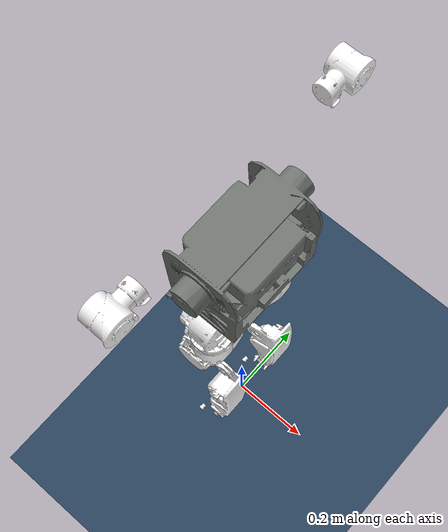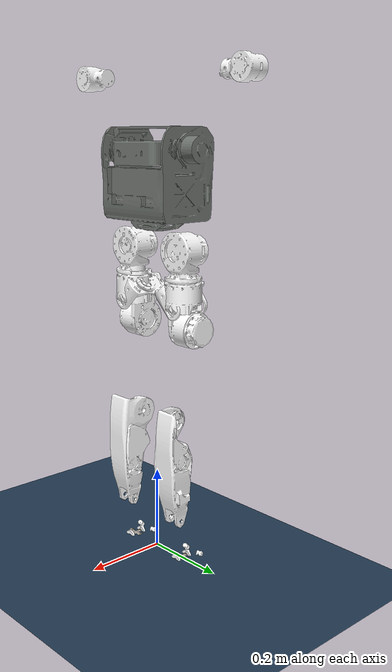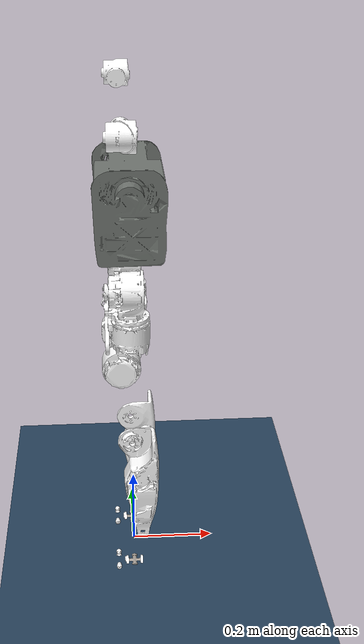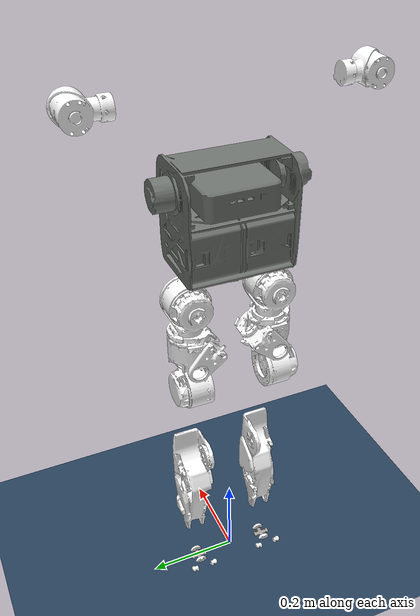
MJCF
<mujoco model="kuavo scene">
  <include file="biped_s31.xml"/>

  <statistic center="0 0 1" extent="1.8"/>

  <visual>
    <headlight diffuse="0.6 0.6 0.6" ambient="0.3 0.3 0.3" specular="0 0 0"/>
    <rgba haze="0.15 0.25 0.35 1"/>
    <global azimuth="160" elevation="-20"/>
  </visual>

  <asset>
    <texture type="skybox" builtin="gradient" rgb1="0.3 0.5 0.7" rgb2="0 0 0" width="512" height="3072"/>
    <texture type="2d" name="groundplane" builtin="checker" mark="edge" rgb1="0.2 0.3 0.4" rgb2="0.1 0.2 0.3"
      markrgb="0.8 0.8 0.8" width="300" height="300"/>
    <material name="groundplane" texture="groundplane" texuniform="true" texrepeat="5 5" reflectance="0.2"/>
  </asset>

  <worldbody>
    <light pos="0 0 3.5" dir="0 0 -1" directional="true"/>
    <geom name="floor" size="0 0 0.05" type="plane" material="groundplane"/>
  </worldbody>

  <keyframe>
    <key name="home"
      qpos="
    0 0 0.98
    1 0 0 0
    0 0 0 0 0 0
    0 0 0 0 0 0
    0 0"/>
  </keyframe>

</mujoco>

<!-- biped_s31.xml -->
<mujoco model="biped_s31">
  <compiler angle="radian" meshdir="../meshes/"/>
  <size njmax="500" nconmax="100" />
  <asset>
    <texture type="skybox" builtin="gradient" rgb1="0.4 0.6 0.8" width="128" height="128"/>
    <texture name="grid" type="2d" builtin="checker" rgb1=".1 .2 .3" rgb2=".2 .3 .4" width="300" height="300"/>
    <material name="grid" texture="grid" texrepeat="8 8" reflectance=".1"/>
    <mesh name="torso" file="torso.STL"/>
    <mesh name="l_leg_roll" file="l_leg_roll.STL"/>
    <mesh name="l_leg_yaw" file="l_leg_yaw.STL"/>
    <mesh name="l_leg_pitch" file="l_leg_pitch.STL"/>
    <mesh name="l_knee" file="l_knee.STL"/>
    <mesh name="l_foot_pitch" file="l_foot_pitch.STL"/>
    <mesh name="l_foot_roll" file="l_foot_roll.STL"/>
    <mesh name="r_leg_roll" file="r_leg_roll.STL"/>
    <mesh name="r_leg_yaw" file="r_leg_yaw.STL"/>
    <mesh name="r_leg_pitch" file="r_leg_pitch.STL"/>
    <mesh name="r_knee" file="r_knee.STL"/>
    <mesh name="r_foot_pitch" file="r_foot_pitch.STL"/>
    <mesh name="r_foot_roll" file="r_foot_roll.STL"/>
    <mesh name="l_arm_pitch" file="l_arm_pitch.STL"/>
    <mesh name="l_arm_roll" file="l_arm_roll.STL"/>
    <mesh name="l_arm_yaw" file="l_arm_yaw.STL"/>
    <mesh name="l_forearm_pitch" file="l_forearm_pitch.STL"/>
    <mesh name="l_hand_yaw" file="l_hand_yaw.STL"/>
    <mesh name="l_hand_pitch" file="l_hand_pitch.STL"/>
    <mesh name="l_hand_roll" file="l_hand_roll.STL"/>
    <mesh name="r_arm_pitch" file="r_arm_pitch.STL"/>
    <mesh name="r_arm_roll" file="r_arm_roll.STL"/>
    <mesh name="r_arm_yaw" file="r_arm_yaw.STL"/>
    <mesh name="r_forearm_pitch" file="r_forearm_pitch.STL"/>
    <mesh name="r_hand_yaw" file="r_hand_yaw.STL"/>
    <mesh name="r_hand_pitch" file="r_hand_pitch.STL"/>
    <mesh name="r_hand_roll" file="r_hand_roll.STL"/>
    <mesh name="neck_motor" file="neck_motor.STL" />
    <mesh name="head" file="head.STL" />
    <mesh name="camera" file="camera.STL" />
  </asset>
  <worldbody>
    <body name="base_link" pos="0 0 0.82">
      <freejoint/>
      <inertial pos="0.0 0.0 0.12722577" quat="1.00000  0.00000  0.00002 -0.00003" mass="26.37053" diaginertia="0.62588371 0.56247677 0.20014604" />
      <geom type="mesh" contype="0" conaffinity="0" group="1" rgba="0.43137 0.45098 0.43137 1" mesh="torso"/>
      <geom type="mesh" rgba="0.75294 0.75294 0.75294 1" mesh="torso" />
      <site name="imu" pos="0 0 0"/>
      <body name="leg_l1_link" pos="-0.0024999 0.087 -0.066">
        <inertial pos="-0.00430148 -2.708e-05 -0.00851195" quat="0.00114226 0.692081 0.00279499 0.721814" mass="1.71093" diaginertia="0.00371121 0.00277272 0.00205799"/>
        <joint name="leg_l1_joint" pos="0 0 0" axis="1 0 0" range="-0.31416 0.66323" damping='0.2' />
        <geom type="mesh" contype="0" conaffinity="0" group="1" density="0" rgba="1 1 1 1" mesh="l_leg_roll"/>
        <body name="leg_l2_link">
          <inertial pos="0 -0.0032256 -0.0908087" quat="0.769899 0.638166 1.50247e-05 -1.35996e-05" mass="0.557629" diaginertia="0.00213816 0.00140333 0.00117498"/>
          <joint name="leg_l2_joint" pos="0 0 0" axis="0 0 1" range="-0.87266 0.7854" damping='0.2' />
          <geom type="mesh" contype="0" conaffinity="0" group="1" density="0" rgba="1 1 1 1" mesh="l_leg_yaw"/>
          <body name="leg_l3_link" pos="0 0 -0.1287">
            <inertial pos="0.00185677 0.0102346 -0.0855838" quat="0.724347 0.00513635 0.0261431 0.688921" mass="4.43577" diaginertia="0.0434466 0.0427748 0.0109324"/>
            <joint name="leg_l3_joint" pos="0 0 0" axis="0 1 0" range="-1.5708 2.0071" damping='0.2' />
            <geom type="mesh" contype="0" conaffinity="0" group="1" density="0" rgba="1 1 1 1" mesh="l_leg_pitch"/>
            <body name="leg_l4_link" pos="0 0 -0.284">
              <inertial pos="0.00716677 -6.696e-05 -0.114819" quat="0.999988 0.000491325 0.000347396 0.0048566" mass="1.61275" diaginertia="0.011037 0.0109512 0.000872235"/>
              <joint name="leg_l4_joint" pos="0 0 0" axis="0 1 0" range="0 2.618" damping='0.2' />
              <geom type="mesh" contype="0" conaffinity="0" group="1" density="0" rgba="1 1 1 1" mesh="l_knee"/>
              <body name="leg_l5_link" pos="0 0 -0.346">
                <inertial pos="0 0 0" quat="0.5 0.5 -0.5 0.5" mass="0.0719352" diaginertia="1.218e-05 6.92e-06 6.92e-06"/>
                <joint name="leg_l5_joint" pos="0 0 0" axis="0 1 0" range="-0.73304 0.38397" damping='0.2' />
                <geom type="mesh" contype="0" conaffinity="0" group="1" density="0" rgba="0.647059 0.619608 0.588235 1" mesh="l_foot_pitch"/>
                <body name="leg_l6_link">
                  <inertial pos="0.0373958 -2.2061e-06 -0.0389679" quat="-5.61629e-06 0.695245 1.1461e-05 0.718773" mass="0.501754" diaginertia="0.00177876 0.00163456 0.000397"/>
                  <joint name="leg_l6_joint" pos="0 0 0" axis="1 0 0" range="-0.5236 0.5236" damping='0.2' />
                  <geom type="mesh" contype="0" conaffinity="0" group="1" density="0" rgba="1 1 1 1" mesh="l_foot_roll"/>
                  <geom size="0.005" pos="-0.07316 0.04773 -0.0593" contype="0" conaffinity="0" group="1" density="0" rgba="1 1 1 1"/>
                  <geom size="0.005" pos="-0.07316 0.04773 -0.0593" rgba="1 1 1 1"/>
                  <geom size="0.005" pos="-0.07316 -0.04773 -0.0593" contype="0" conaffinity="0" group="1" density="0" rgba="1 1 1 1"/>
                  <geom size="0.005" pos="-0.07316 -0.04773 -0.0593" rgba="1 1 1 1"/>
                  <geom size="0.005" pos="0.16902 0.04773 -0.0593" contype="0" conaffinity="0" group="1" density="0" rgba="1 1 1 1"/>
                  <geom size="0.005" pos="0.16902 0.04773 -0.0593" rgba="1 1 1 1"/>
                  <geom size="0.005" pos="0.16902 -0.04773 -0.0593" contype="0" conaffinity="0" group="1" density="0" rgba="1 1 1 1"/>
                  <geom size="0.005" pos="0.16902 -0.04773 -0.0593" rgba="1 1 1 1"/>
                </body>
              </body>
            </body>
          </body>
        </body>
      </body>
      <body name="leg_r1_link" pos="-0.0024999 -0.087 -0.066">
        <inertial pos="-0.00430146 2.709e-05 -0.00851195" quat="-0.00114226 0.692081 -0.00279499 0.721814" mass="1.71093" diaginertia="0.00371121 0.00277272 0.00205799"/>
        <joint name="leg_r1_joint" pos="0 0 0" axis="1 0 0" range="-0.31416 0.66323" damping='0.2' />
        <geom type="mesh" contype="0" conaffinity="0" group="1" density="0" rgba="1 1 1 1" mesh="r_leg_roll"/>
        <body name="leg_r2_link">
          <inertial pos="0 0.00322561 -0.0908087" quat="0.638166 0.769899 1.35996e-05 -1.50247e-05" mass="0.557629" diaginertia="0.00213816 0.00140333 0.00117498"/>
          <joint name="leg_r2_joint" pos="0 0 0" axis="0 0 1" range="-0.87266 0.7854" damping='0.2' />
          <geom type="mesh" contype="0" conaffinity="0" group="1" density="0" rgba="1 1 1 1" mesh="r_leg_yaw"/>
          <body name="leg_r3_link" pos="0 0 -0.1287">
            <inertial pos="0.00185677 -0.0102346 -0.0855838" quat="0.714834 0.0057373 0.0258337 0.698793" mass="4.43577" diaginertia="0.0442361 0.0427757 0.010933"/>
            <joint name="leg_r3_joint" pos="0 0 0" axis="0 1 0" range="-1.5708 2.0071" damping='0.2' />
            <geom type="mesh" contype="0" conaffinity="0" group="1" density="0" rgba="1 1 1 1" mesh="r_leg_pitch"/>
            <body name="leg_r4_link" pos="0 0 -0.284">
              <inertial pos="0.00716677 6.696e-05 -0.114819" quat="0.999988 0.000491325 0.000347396 0.0048566" mass="1.61275" diaginertia="0.011037 0.0109512 0.000872235"/>
              <joint name="leg_r4_joint" pos="0 0 0" axis="0 1 0" range="0 2.618" damping='0.2' />
              <geom type="mesh" contype="0" conaffinity="0" group="1" density="0" rgba="1 1 1 1" mesh="r_knee"/>
              <body name="leg_r5_link" pos="0 0 -0.346">
                <inertial pos="0 0 0" quat="0.5 0.5 -0.5 0.5" mass="0.0719352" diaginertia="1.218e-05 6.92e-06 6.92e-06"/>
                <joint name="leg_r5_joint" pos="0 0 0" axis="0 1 0" range="-0.73304 0.38397" damping='0.2' />
                <geom type="mesh" contype="0" conaffinity="0" group="1" density="0" rgba="0.647059 0.619608 0.588235 1" mesh="r_foot_pitch"/>
                <body name="leg_r6_link">
                  <inertial pos="0.0373958 -2.2061e-06 -0.0389679" quat="-5.61629e-06 0.695245 1.1461e-05 0.718773" mass="0.501754" diaginertia="0.00177876 0.00163456 0.000397"/>
                  <joint name="leg_r6_joint" pos="0 0 0" axis="1 0 0" range="-0.5236 0.5236" damping='0.2' />
                  <geom type="mesh" contype="0" conaffinity="0" group="1" density="0" rgba="1 1 1 1" mesh="r_foot_roll"/>
                  <geom size="0.005" pos="-0.07316 0.04773 -0.0593" contype="0" conaffinity="0" group="1" density="0" rgba="1 1 1 1"/>
                  <geom size="0.005" pos="-0.07316 0.04773 -0.0593" rgba="1 1 1 1"/>
                  <geom size="0.005" pos="-0.07316 -0.04773 -0.0593" contype="0" conaffinity="0" group="1" density="0" rgba="1 1 1 1"/>
                  <geom size="0.005" pos="-0.07316 -0.04773 -0.0593" rgba="1 1 1 1"/>
                  <geom size="0.005" pos="0.16902 0.04773 -0.0593" contype="0" conaffinity="0" group="1" density="0" rgba="1 1 1 1"/>
                  <geom size="0.005" pos="0.16902 0.04773 -0.0593" rgba="1 1 1 1"/>
                  <geom size="0.005" pos="0.16902 -0.04773 -0.0593" contype="0" conaffinity="0" group="1" density="0" rgba="1 1 1 1"/>
                  <geom size="0.005" pos="0.16902 -0.04773 -0.0593" rgba="1 1 1 1"/>
                </body>
              </body>
            </body>
          </body>
        </body>
      </body>
      <body name="zarm_l1_link" pos="-0.0175476 0.2617 0.3245">
        <inertial pos="0.0146835 -0.0166604 -6.82857e-05" quat="0.696586 0.712206 -0.0625859 -0.0601207" mass="0.794" diaginertia="0.000271947 0.000196224 0.000121256"/>
        <joint name="zarm_l1_joint" pos="0 0 0" axis="0 1 0" range="-2.0933 0.5233" actuatorfrcrange="-60 60" damping='0.2' />
        <geom type="mesh" contype="0" conaffinity="0" group="1" density="0" rgba="1 1 1 1" mesh="l_arm_pitch"/>

      </body>
      <body name="zarm_r1_link" pos="-0.0175476 -0.2617 0.3245">
        <inertial pos="0.0146744 0.0168298 -8.16712e-05" quat="0.712375 0.696324 0.0605536 0.0631598" mass="0.794" diaginertia="0.000271946 0.000196219 0.000121103"/>
        <joint name="zarm_r1_joint" pos="0 0 0" axis="0 1 0" range="-2.0933 0.5233" actuatorfrcrange="-60 60" damping='0.2' />
        <geom type="mesh" contype="0" conaffinity="0" group="1" density="0" rgba="1 1 1 1" mesh="r_arm_pitch"/>

      </body>

    </body>
  </worldbody>
  <actuator>
        <motor gear="1" joint="leg_l1_joint" name="leg_l1_motor" ctrllimited="true"  ctrlrange='-150 150'/>
        <motor gear="1" joint="leg_l2_joint" name="leg_l2_motor" ctrllimited="true"  ctrlrange='-150 150'/>
        <motor gear="1" joint="leg_l3_joint" name="leg_l3_motor" ctrllimited="true"  ctrlrange='-200 200'/>
        <motor gear="1" joint="leg_l4_joint" name="leg_l4_motor" ctrllimited="true"  ctrlrange='-200 200'/>
        <motor gear="1" joint="leg_l5_joint" name="leg_l5_motor" ctrllimited="true"  ctrlrange='-90 90'/>
        <motor gear="1" joint="leg_l6_joint" name="leg_l6_motor" ctrllimited="true"  ctrlrange='-90 90'/>

        <motor gear="1" joint="leg_r1_joint" name="leg_r1_motor" ctrllimited="true"  ctrlrange='-150 150'/>
        <motor gear="1" joint="leg_r2_joint" name="leg_r2_motor" ctrllimited="true"  ctrlrange='-150 150'/>
        <motor gear="1" joint="leg_r3_joint" name="leg_r3_motor" ctrllimited="true"  ctrlrange='-200 200'/>
        <motor gear="1" joint="leg_r4_joint" name="leg_r4_motor" ctrllimited="true"  ctrlrange='-200 200'/>
        <motor gear="1" joint="leg_r5_joint" name="leg_r5_motor" ctrllimited="true"  ctrlrange='-90 90'/>
        <motor gear="1" joint="leg_r6_joint" name="leg_r6_motor" ctrllimited="true"  ctrlrange='-90 90'/>

        <motor gear="1" joint="zarm_l1_joint" name="zarm_l1_motor" ctrllimited="true"  ctrlrange='-150 150'/>

        <motor gear="1" joint="zarm_r1_joint" name="zarm_r1_motor" ctrllimited="true"  ctrlrange='-150 150'/>

  </actuator>
  <sensor>
      <accelerometer name="BodyAcc" site="imu"/>
      <velocimeter name="BodyVel" site="imu"/>
      <gyro name="BodyGyro" site="imu"/>
      <framepos name="BodyPos" objtype="site" objname="imu"/>
      <framequat name="BodyQuat" objtype="site" objname="imu"/>

      <jointpos name="leg_l1_pos" joint="leg_l1_joint"/>
      <jointpos name="leg_l2_pos" joint="leg_l2_joint"/>
      <jointpos name="leg_l3_pos" joint="leg_l3_joint"/>
      <jointpos name="leg_l4_pos" joint="leg_l4_joint"/>
      <jointpos name="leg_l5_pos" joint="leg_l5_joint"/>
      <jointpos name="leg_l6_pos" joint="leg_l6_joint"/>

      <jointpos name="leg_r1_pos" joint="leg_r1_joint"/>
      <jointpos name="leg_r2_pos" joint="leg_r2_joint"/>
      <jointpos name="leg_r3_pos" joint="leg_r3_joint"/>
      <jointpos name="leg_r4_pos" joint="leg_r4_joint"/>
      <jointpos name="leg_r5_pos" joint="leg_r5_joint"/>
      <jointpos name="leg_r6_pos" joint="leg_r6_joint"/>

      <jointpos name="zarm_l1_pos" joint="zarm_l1_joint"/>

      <jointpos name="zarm_r1_pos" joint="zarm_r1_joint"/>

      <jointvel name="leg_l1_vel" joint="leg_l1_joint"/>
      <jointvel name="leg_l2_vel" joint="leg_l2_joint"/>
      <jointvel name="leg_l3_vel" joint="leg_l3_joint"/>
      <jointvel name="leg_l4_vel" joint="leg_l4_joint"/>
      <jointvel name="leg_l5_vel" joint="leg_l5_joint"/>
      <jointvel name="leg_l6_vel" joint="leg_l6_joint"/>

      <jointvel name="leg_r1_vel" joint="leg_r1_joint"/>
      <jointvel name="leg_r2_vel" joint="leg_r2_joint"/>
      <jointvel name="leg_r3_vel" joint="leg_r3_joint"/>
      <jointvel name="leg_r4_vel" joint="leg_r4_joint"/>
      <jointvel name="leg_r5_vel" joint="leg_r5_joint"/>
      <jointvel name="leg_r6_vel" joint="leg_r6_joint"/>

      <jointvel name="zarm_l1_vel" joint="zarm_l1_joint"/>

      <jointvel name="zarm_r1_vel" joint="zarm_r1_joint"/>

  </sensor>
</mujoco>
